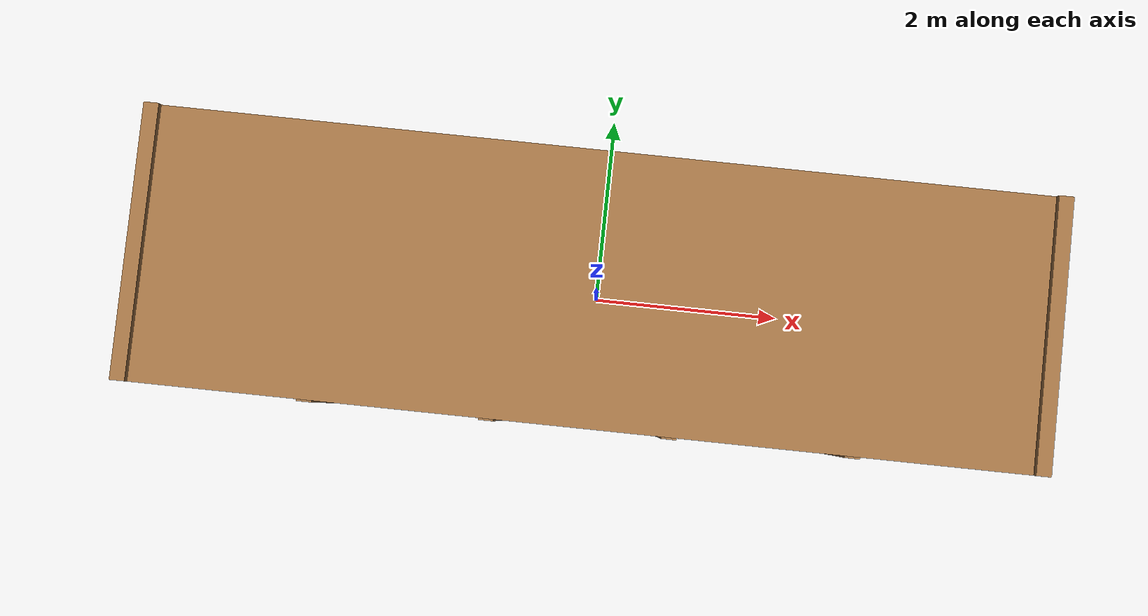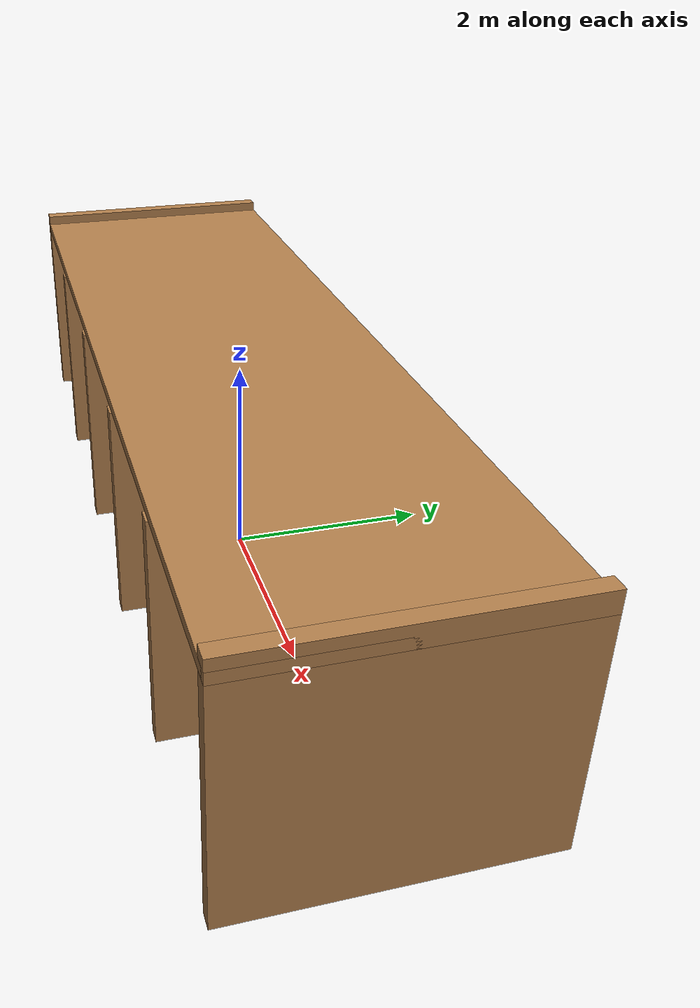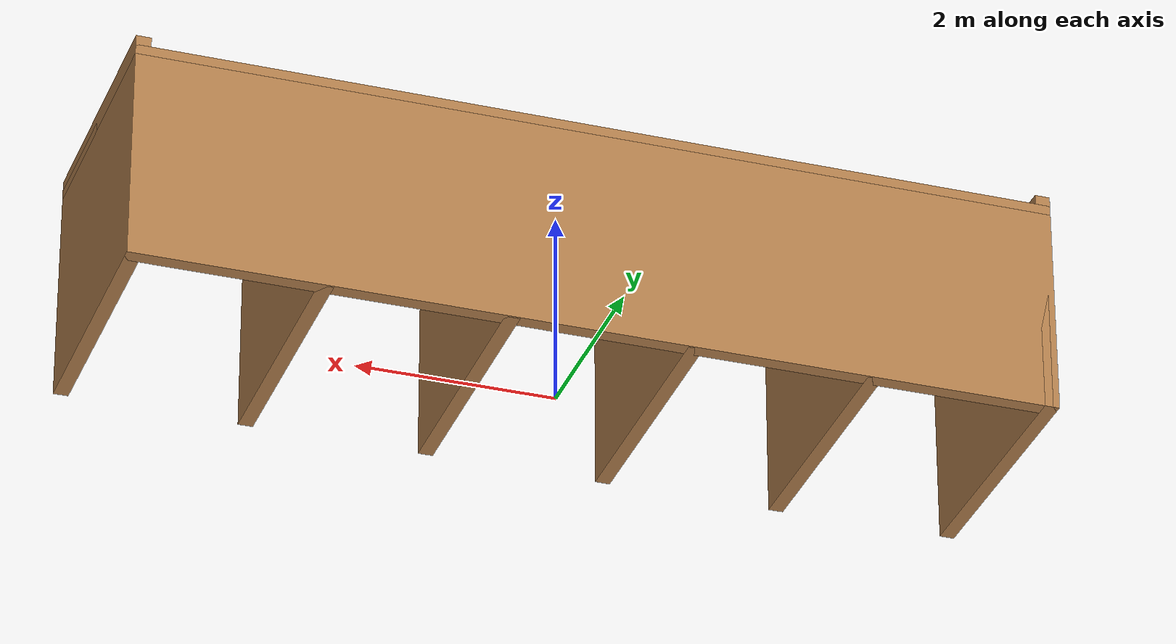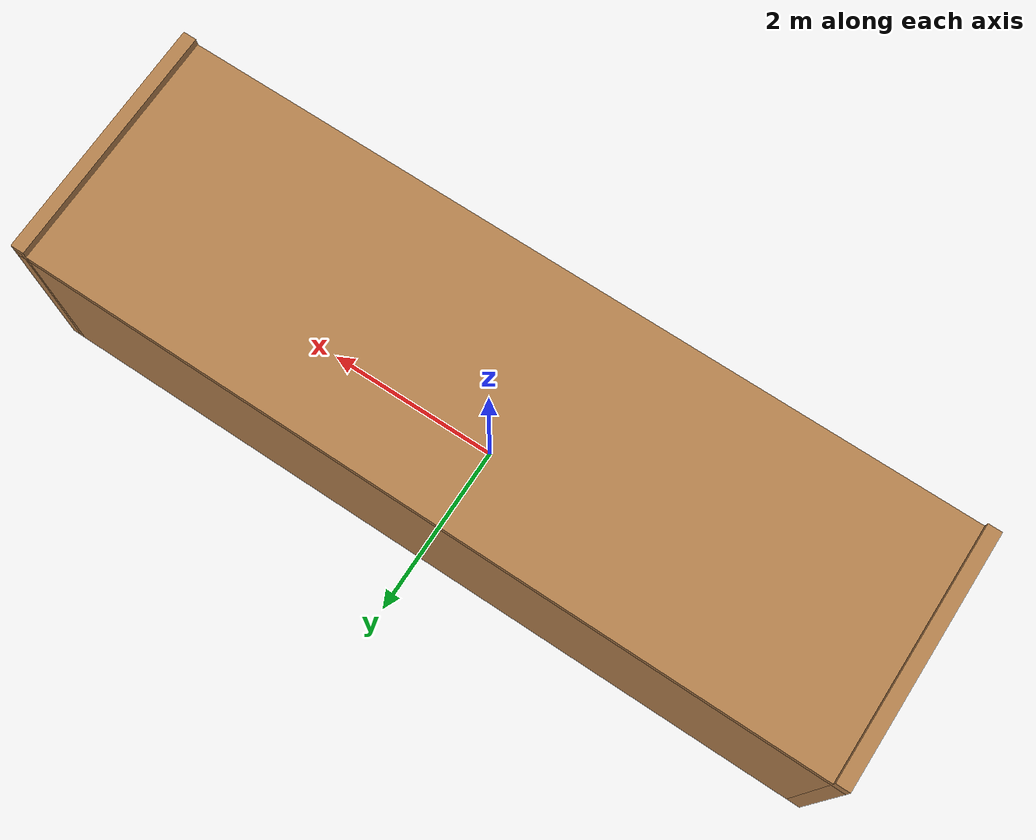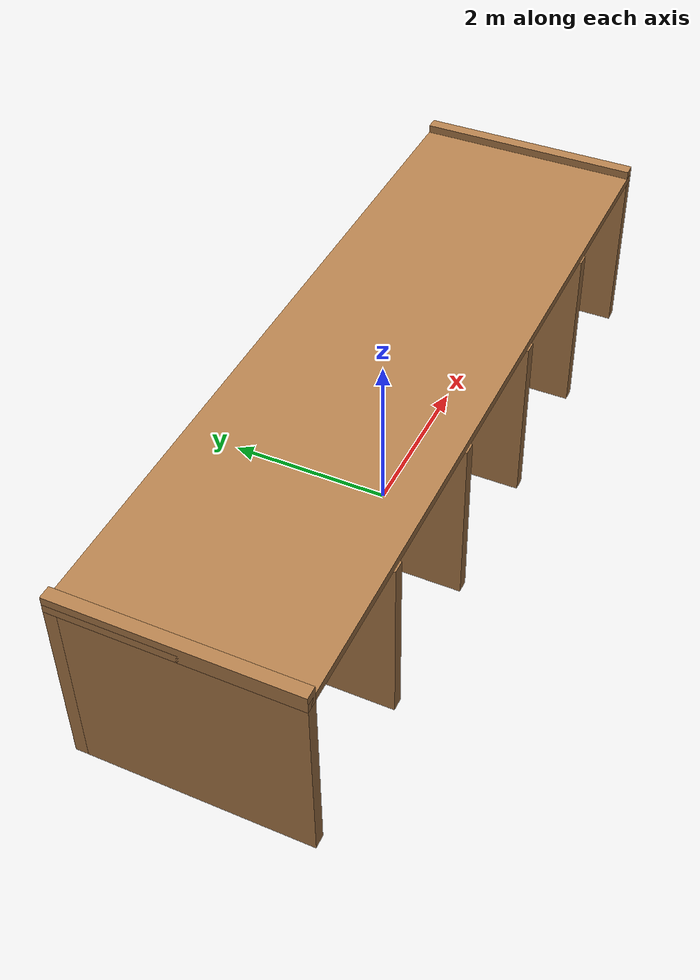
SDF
<?xml version='1.0'?>
<sdf version='1.7'>
  <model name='parkplatz_01'>
    <pose>-0.025 -0.04 0 0 -0 0</pose>
    <link name='Floor_0'>
      <collision name='Floor_0_Collision'>
        <geometry>
          <box>
            <size>9.2 2.75 0.1</size>
          </box>
        </geometry>
        <pose>0 0 0.05 0 -0 0</pose>
      </collision>
      <visual name='Floor_0_Visual'>
        <pose>0 0 0.05 0 -0 0</pose>
        <geometry>
          <box>
            <size>9.2 2.75 0.1</size>
          </box>
        </geometry>
        <material>
          <script>
            <uri>file://media/materials/scripts/gazebo.material</uri>
            <name>Gazebo/Wood</name>
          </script>
          <ambient>1 1 1 1</ambient>
        </material>
        <meta>
          <layer>1</layer>
        </meta>
      </visual>
      <pose>0 0.01 2.163 0 -0 0</pose>
    </link>
    <link name='Wall_10'>
      <collision name='Wall_10_Collision'>
        <geometry>
          <box>
            <size>2.75 0.15 2.163</size>
          </box>
        </geometry>
        <pose>0 0 1.0815 0 -0 0</pose>
      </collision>
      <visual name='Wall_10_Visual'>
        <pose>0 0 1.0815 0 -0 0</pose>
        <geometry>
          <box>
            <size>2.75 0.15 2.163</size>
          </box>
        </geometry>
        <material>
          <script>
            <uri>file://media/materials/scripts/gazebo.material</uri>
            <name>Gazebo/Wood</name>
          </script>
          <ambient>1 1 1 1</ambient>
        </material>
        <meta>
          <layer>0</layer>
        </meta>
      </visual>
      <pose>0.885 -0.01 0 0 -0 -1.5708</pose>
    </link>
    <link name='Wall_12'>
      <collision name='Wall_12_Collision'>
        <geometry>
          <box>
            <size>2.75 0.15 2.163</size>
          </box>
        </geometry>
        <pose>0 0 1.0815 0 -0 0</pose>
      </collision>
      <visual name='Wall_12_Visual'>
        <pose>0 0 1.0815 0 -0 0</pose>
        <geometry>
          <box>
            <size>2.75 0.15 2.163</size>
          </box>
        </geometry>
        <material>
          <script>
            <uri>file://media/materials/scripts/gazebo.material</uri>
            <name>Gazebo/Wood</name>
          </script>
          <ambient>1 1 1 1</ambient>
        </material>
        <meta>
          <layer>0</layer>
        </meta>
      </visual>
      <pose>2.695 -0.01 0 0 -0 -1.5708</pose>
    </link>
    <link name='Wall_17'>
      <collision name='Wall_17_Collision'>
        <geometry>
          <box>
            <size>9.2 0.15 2.163</size>
          </box>
        </geometry>
        <pose>0 0 1.0815 0 -0 0</pose>
      </collision>
      <visual name='Wall_17_Visual'>
        <pose>0 0 1.0815 0 -0 0</pose>
        <geometry>
          <box>
            <size>9.2 0.15 2.163</size>
          </box>
        </geometry>
        <material>
          <script>
            <uri>file://media/materials/scripts/gazebo.material</uri>
            <name>Gazebo/Wood</name>
          </script>
          <ambient>1 1 1 1</ambient>
        </material>
        <meta>
          <layer>0</layer>
        </meta>
      </visual>
      <pose>0 1.31 0 0 -0 0</pose>
    </link>
    <link name='Wall_22'>
      <collision name='Wall_22_Collision'>
        <geometry>
          <box>
            <size>2.75 0.15 2.163</size>
          </box>
        </geometry>
        <pose>0 0 1.0815 0 -0 0</pose>
      </collision>
      <visual name='Wall_22_Visual'>
        <pose>0 0 1.0815 0 -0 0</pose>
        <geometry>
          <box>
            <size>2.75 0.15 2.163</size>
          </box>
        </geometry>
        <material>
          <script>
            <uri>file://media/materials/scripts/gazebo.material</uri>
            <name>Gazebo/Wood</name>
          </script>
          <ambient>1 1 1 1</ambient>
        </material>
        <meta>
          <layer>0</layer>
        </meta>
      </visual>
      <pose>4.525 0.01 0 0 -0 -1.5708</pose>
    </link>
    <link name='Wall_24'>
      <collision name='Wall_24_Collision'>
        <geometry>
          <box>
            <size>2.75 0.15 0.2</size>
          </box>
        </geometry>
        <pose>0 0 0.1 0 -0 0</pose>
      </collision>
      <visual name='Wall_24_Visual'>
        <pose>0 0 0.1 0 -0 0</pose>
        <geometry>
          <box>
            <size>2.75 0.15 0.2</size>
          </box>
        </geometry>
        <material>
          <script>
            <uri>file://media/materials/scripts/gazebo.material</uri>
            <name>Gazebo/Wood</name>
          </script>
          <ambient>1 1 1 1</ambient>
        </material>
        <meta>
          <layer>1</layer>
        </meta>
      </visual>
      <pose>-4.525 0.01 2.163 0 -0 -1.5708</pose>
    </link>
    <link name='Wall_30'>
      <collision name='Wall_30_Collision'>
        <geometry>
          <box>
            <size>2.75 0.15 0.2</size>
          </box>
        </geometry>
        <pose>0 0 0.1 0 -0 0</pose>
      </collision>
      <visual name='Wall_30_Visual'>
        <pose>0 0 0.1 0 -0 0</pose>
        <geometry>
          <box>
            <size>2.75 0.15 0.2</size>
          </box>
        </geometry>
        <material>
          <script>
            <uri>file://media/materials/scripts/gazebo.material</uri>
            <name>Gazebo/Wood</name>
          </script>
          <ambient>1 1 1 1</ambient>
        </material>
        <meta>
          <layer>1</layer>
        </meta>
      </visual>
      <pose>4.525 0.01 2.163 0 -0 -1.5708</pose>
    </link>
    <link name='Wall_4'>
      <collision name='Wall_4_Collision'>
        <geometry>
          <box>
            <size>2.75 0.15 2.163</size>
          </box>
        </geometry>
        <pose>0 0 1.0815 0 -0 0</pose>
      </collision>
      <visual name='Wall_4_Visual'>
        <pose>0 0 1.0815 0 -0 0</pose>
        <geometry>
          <box>
            <size>2.75 0.15 2.163</size>
          </box>
        </geometry>
        <material>
          <script>
            <uri>file://media/materials/scripts/gazebo.material</uri>
            <name>Gazebo/Wood</name>
          </script>
          <ambient>1 1 1 1</ambient>
        </material>
        <meta>
          <layer>0</layer>
        </meta>
      </visual>
      <pose>-4.525 0.01 0 0 -0 -1.5708</pose>
    </link>
    <link name='Wall_6'>
      <collision name='Wall_6_Collision'>
        <geometry>
          <box>
            <size>2.75 0.15 2.163</size>
          </box>
        </geometry>
        <pose>0 0 1.0815 0 -0 0</pose>
      </collision>
      <visual name='Wall_6_Visual'>
        <pose>0 0 1.0815 0 -0 0</pose>
        <geometry>
          <box>
            <size>2.75 0.15 2.163</size>
          </box>
        </geometry>
        <material>
          <script>
            <uri>file://media/materials/scripts/gazebo.material</uri>
            <name>Gazebo/Wood</name>
          </script>
          <ambient>1 1 1 1</ambient>
        </material>
        <meta>
          <layer>0</layer>
        </meta>
      </visual>
      <pose>-2.725 -0.01 0 0 -0 -1.5708</pose>
    </link>
    <link name='Wall_8'>
      <collision name='Wall_8_Collision'>
        <geometry>
          <box>
            <size>2.75 0.15 2.163</size>
          </box>
        </geometry>
        <pose>0 0 1.0815 0 -0 0</pose>
      </collision>
      <visual name='Wall_8_Visual'>
        <pose>0 0 1.0815 0 -0 0</pose>
        <geometry>
          <box>
            <size>2.75 0.15 2.163</size>
          </box>
        </geometry>
        <material>
          <script>
            <uri>file://media/materials/scripts/gazebo.material</uri>
            <name>Gazebo/Wood</name>
          </script>
          <ambient>1 1 1 1</ambient>
        </material>
        <meta>
          <layer>0</layer>
        </meta>
      </visual>
      <pose>-0.925 -0.01 0 0 -0 -1.5708</pose>
    </link>
    <static>1</static>
  </model>
</sdf>
